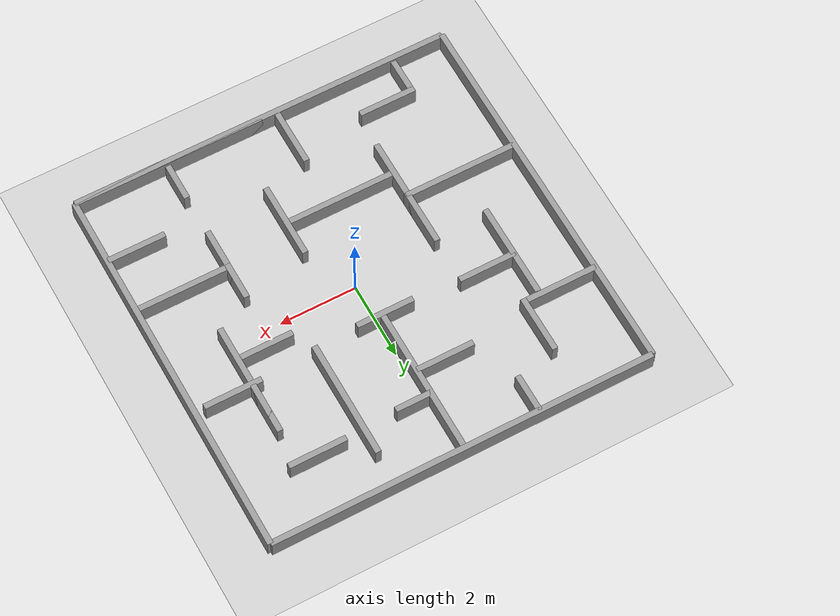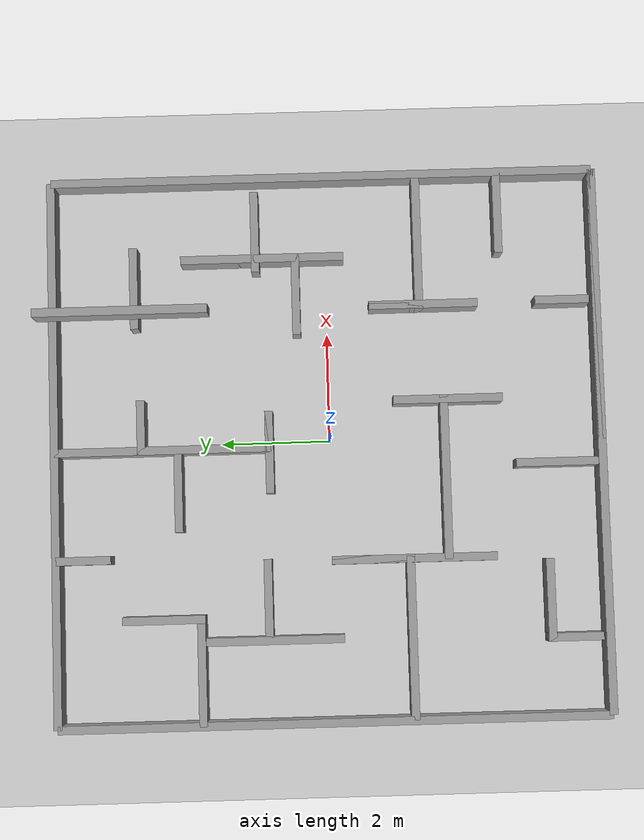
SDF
<sdf version="1.7">
 <world name="default">
  <light name="sun" type="directional">
   <pose>0 0 10 0 -0 0</pose>
   <diffuse>0.8 0.8 0.8 1</diffuse>
   <specular>0.2 0.2 0.2 1</specular>
   <attenuation>
    <range>1000</range>
    <constant>0.9</constant>
    <linear>0.01</linear>
    <quadratic>0.001</quadratic>
   </attenuation>
   <direction>-0.5 0.1 -0.9</direction>
   <spot><inner_angle>0</inner_angle><outer_angle>0</outer_angle><falloff>0</falloff></spot>
  </light>
  <model name="ground_plane">
   <static>1</static>
   <link name="link">
    <collision name="collision">
     <geometry><plane><normal>0 0 1</normal><size>100 100</size></plane></geometry>
     <surface><friction><ode><mu>100</mu><mu2>50</mu2></ode></friction></surface>
    </collision>
    <visual name="visual">
     <cast_shadows>0</cast_shadows>
     <geometry><plane><normal>0 0 1</normal><size>100 100</size></plane></geometry>
     <material>
      <script><uri>file://media/materials/scripts/gazebo.material</uri><name>Gazebo/Grey</name></script>
     </material>
    </visual>
   </link>
  </model>
  <gravity>0 0 -9.8</gravity>
  <magnetic_field>6e-06 2.3e-05 -4.2e-05</magnetic_field>
  <atmosphere type="adiabatic"/>
  <physics type="ode">
   <max_step_size>0.001</max_step_size>
   <real_time_factor>1</real_time_factor>
   <real_time_update_rate>1000</real_time_update_rate>
  </physics>
  <scene><ambient>0.4 0.4 0.4 1</ambient><background>0.7 0.7 0.7 1</background><shadows>1</shadows></scene>
  <audio><device>default</device></audio>
  <spherical_coordinates>
   <surface_model>EARTH_WGS84</surface_model>
   <latitude_deg>0</latitude_deg>
   <longitude_deg>0</longitude_deg>
   <elevation>0</elevation>
   <heading_deg>0</heading_deg>
  </spherical_coordinates>
  <model name="maze">
   <pose>-0.106037 0.038522 0 0 -0 0</pose>
   <link name="Wall_164">
    <collision name="Wall_164_Collision">
     <geometry><box><size>5 0.15 0.5</size></box></geometry>
     <pose>0 0 0.25 0 -0 0</pose>
    </collision>
    <visual name="Wall_164_Visual">
     <pose>0 0 0.25 0 -0 0</pose>
     <geometry><box><size>5 0.15 0.5</size></box></geometry>
     <material>
      <script><uri>file://media/materials/scripts/gazebo.material</uri><name>Gazebo/Grey</name></script>
      <ambient>1 1 1 1</ambient>
     </material>
     <meta><layer>0</layer></meta>
    </visual>
    <pose>2.5 -5 0 0 -0 0</pose>
   </link>
   <link name="Wall_165">
    <collision name="Wall_165_Collision">
     <geometry><box><size>10 0.15 0.5</size></box></geometry>
     <pose>0 0 0.25 0 -0 0</pose>
    </collision>
    <visual name="Wall_165_Visual">
     <pose>0 0 0.25 0 -0 0</pose>
     <geometry><box><size>10 0.15 0.5</size></box></geometry>
     <material>
      <script><uri>file://media/materials/scripts/gazebo.material</uri><name>Gazebo/Grey</name></script>
      <ambient>1 1 1 1</ambient>
     </material>
     <meta><layer>0</layer></meta>
    </visual>
    <pose>-0.0 -5 0 0 -0 3.14159</pose>
   </link>
   <link name="Wall_166">
    <collision name="Wall_166_Collision">
     <geometry><box><size>10 0.15 0.5</size></box></geometry>
     <pose>0 0 0.25 0 -0 0</pose>
    </collision>
    <visual name="Wall_166_Visual">
     <pose>0 0 0.25 0 -0 0</pose>
     <geometry><box><size>10 0.15 0.5</size></box></geometry>
     <material>
      <script><uri>file://media/materials/scripts/gazebo.material</uri><name>Gazebo/Grey</name></script>
      <ambient>1 1 1 1</ambient>
     </material>
     <meta><layer>0</layer></meta>
    </visual>
    <pose>-5 -0.0 0 0 -0 1.5708</pose>
   </link>
   <link name="Wall_168">
    <collision name="Wall_168_Collision">
     <geometry><box><size>10 0.15 0.5</size></box></geometry>
     <pose>0 0 0.25 0 -0 0</pose>
    </collision>
    <visual name="Wall_168_Visual">
     <pose>0 0 0.25 0 -0 0</pose>
     <geometry><box><size>10 0.15 0.5</size></box></geometry>
     <material>
      <script><uri>file://media/materials/scripts/gazebo.material</uri><name>Gazebo/Grey</name></script>
      <ambient>1 1 1 1</ambient>
     </material>
     <meta><layer>0</layer></meta>
    </visual>
    <pose>-0.0 5 0 0 -0 0</pose>
   </link>
   <link name="Wall_169">
    <collision name="Wall_169_Collision">
     <geometry><box><size>10 0.15 0.5</size></box></geometry>
     <pose>0 0 0.25 0 -0 0</pose>
    </collision>
    <visual name="Wall_169_Visual">
     <pose>0 0 0.25 0 -0 0</pose>
     <geometry><box><size>10 0.15 0.5</size></box></geometry>
     <material>
      <script><uri>file://media/materials/scripts/gazebo.material</uri><name>Gazebo/Grey</name></script>
      <ambient>1 1 1 1</ambient>
     </material>
     <meta><layer>0</layer></meta>
    </visual>
    <pose>5 -0.0 0 0 -0 -1.5708</pose>
   </link>
   <link name="Wall_177">
    <collision name="Wall_177_Collision">
     <geometry><box><size>1.5 0.15 0.5</size></box></geometry>
     <pose>0 0 0.25 0 -0 0</pose>
    </collision>
    <visual name="Wall_177_Visual">
     <pose>0 0 0.25 0 -0 0</pose>
     <geometry><box><size>1.5 0.15 0.5</size></box></geometry>
     <material>
      <script><uri>file://media/materials/scripts/gazebo.material</uri><name>Gazebo/Grey</name></script>
      <ambient>1 1 1 1</ambient>
     </material>
     <meta><layer>0</layer></meta>
    </visual>
    <pose>-0.75 2.75 0 0 -0 3.14159</pose>
   </link>
   <link name="Wall_179">
    <collision name="Wall_179_Collision">
     <geometry><box><size>2.5 0.15 0.5</size></box></geometry>
     <pose>-0.05 0 0.25 0 -0 0</pose>
    </collision>
    <visual name="Wall_179_Visual">
     <pose>-0.05 0 0.25 0 -0 0</pose>
     <geometry><box><size>2.5 0.15 0.5</size></box></geometry>
     <material>
      <script><uri>file://media/materials/scripts/gazebo.material</uri><name>Gazebo/Grey</name></script>
      <ambient>1 1 1 1</ambient>
     </material>
     <meta><layer>0</layer></meta>
    </visual>
    <pose>-3.5 1.0 0 0 -0 -1.5708</pose>
   </link>
   <link name="Wall_247">
    <collision name="Wall_247_Collision">
     <geometry><box><size>4 0.15 0.5</size></box></geometry>
     <pose>0 0 0.25 0 -0 0</pose>
    </collision>
    <visual name="Wall_247_Visual">
     <pose>0 0 0.25 0 -0 0</pose>
     <geometry><box><size>4 0.15 0.5</size></box></geometry>
     <material>
      <script><uri>file://media/materials/scripts/gazebo.material</uri><name>Gazebo/Grey</name></script>
      <ambient>1 1 1 1</ambient>
     </material>
     <meta><layer>0</layer></meta>
    </visual>
    <pose>-0.0 3.0 0 0 -0 -1.5708</pose>
   </link>
   <link name="Wall_253">
    <collision name="Wall_253_Collision">
     <geometry><box><size>3 0.15 0.5</size></box></geometry>
     <pose>0 0 0.25 0 -0 0</pose>
    </collision>
    <visual name="Wall_253_Visual">
     <pose>0 0 0.25 0 -0 0</pose>
     <geometry><box><size>3 0.15 0.5</size></box></geometry>
     <material>
      <script><uri>file://media/materials/scripts/gazebo.material</uri><name>Gazebo/Grey</name></script>
      <ambient>1 1 1 1</ambient>
     </material>
     <meta><layer>0</layer></meta>
    </visual>
    <pose>2.25 3.5 2 0 -0 -1.5708</pose>
   </link>
   <link name="Wall_256">
    <collision name="Wall_256_Collision">
     <geometry><box><size>1.5 0.15 0.5</size></box></geometry>
     <pose>0 0 0.25 0 -0 0</pose>
    </collision>
    <visual name="Wall_256_Visual">
     <pose>0 0 0.25 0 -0 0</pose>
     <geometry><box><size>1.5 0.15 0.5</size></box></geometry>
     <material>
      <script><uri>file://media/materials/scripts/gazebo.material</uri><name>Gazebo/Grey</name></script>
      <ambient>1 1 1 1</ambient>
     </material>
     <meta><layer>0</layer></meta>
    </visual>
    <pose>3.0 3.5 0 0 -0 0</pose>
   </link>
   <link name="Wall_264">
    <collision name="Wall_264_Collision">
     <geometry><box><size>1.5 0.15 0.5</size></box></geometry>
     <pose>0 0 0.25 0 -0 0</pose>
    </collision>
    <visual name="Wall_264_Visual">
     <pose>0 0 0.25 0 -0 0</pose>
     <geometry><box><size>1.5 0.15 0.5</size></box></geometry>
     <material>
      <script><uri>file://media/materials/scripts/gazebo.material</uri><name>Gazebo/Grey</name></script>
      <ambient>1 1 1 1</ambient>
     </material>
     <meta><layer>0</layer></meta>
    </visual>
    <pose>4.0 1.25 0 0 -0 3.14159</pose>
   </link>
   <link name="Wall_265">
    <collision name="Wall_265_Collision">
     <geometry><box><size>1.5 0.15 0.5</size></box></geometry>
     <pose>0 0 0.25 0 -0 0</pose>
    </collision>
    <visual name="Wall_265_Visual">
     <pose>0 0 0.25 0 -0 0</pose>
     <geometry><box><size>1.5 0.15 0.5</size></box></geometry>
     <material>
      <script><uri>file://media/materials/scripts/gazebo.material</uri><name>Gazebo/Grey</name></script>
      <ambient>1 1 1 1</ambient>
     </material>
     <meta><layer>0</layer></meta>
    </visual>
    <pose>3.50043 1.87678 0 0 -0 1.5708</pose>
   </link>
   <link name="Wall_266">
    <collision name="Wall_266_Collision">
     <geometry><box><size>3 0.15 0.5</size></box></geometry>
     <pose>0 0 0.25 0 -0 0</pose>
    </collision>
    <visual name="Wall_266_Visual">
     <pose>0 0 0.25 0 -0 0</pose>
     <geometry><box><size>3 0.15 0.5</size></box></geometry>
     <material>
      <script><uri>file://media/materials/scripts/gazebo.material</uri><name>Gazebo/Grey</name></script>
      <ambient>1 1 1 1</ambient>
     </material>
     <meta><layer>0</layer></meta>
    </visual>
    <pose>3.50043 1.12678 0 0 -0 -1.5708</pose>
   </link>
   <link name="Wall_268">
    <collision name="Wall_268_Collision">
     <geometry><box><size>1.5 0.15 0.5</size></box></geometry>
     <pose>0 0 0.25 0 -0 0</pose>
    </collision>
    <visual name="Wall_268_Visual">
     <pose>0 0 0.25 0 -0 0</pose>
     <geometry><box><size>1.5 0.15 0.5</size></box></geometry>
     <material>
      <script><uri>file://media/materials/scripts/gazebo.material</uri><name>Gazebo/Grey</name></script>
      <ambient>1 1 1 1</ambient>
     </material>
     <meta><layer>0</layer></meta>
    </visual>
    <pose>2.81408 0.520327 0 0 -0 3.14159</pose>
   </link>
   <link name="Wall_272">
    <collision name="Wall_272_Collision">
     <geometry><box><size>2 0.15 0.5</size></box></geometry>
     <pose>0 0 0.25 0 -0 0</pose>
    </collision>
    <visual name="Wall_272_Visual">
     <pose>0 0 0.25 0 -0 0</pose>
     <geometry><box><size>2 0.15 0.5</size></box></geometry>
     <material>
      <script><uri>file://media/materials/scripts/gazebo.material</uri><name>Gazebo/Grey</name></script>
      <ambient>1 1 1 1</ambient>
     </material>
     <meta><layer>0</layer></meta>
    </visual>
    <pose>-4.00758 2.38241 0 0 -0 0</pose>
   </link>
   <link name="Wall_273">
    <collision name="Wall_273_Collision">
     <geometry><box><size>1.5 0.15 0.5</size></box></geometry>
     <pose>0 0 0.25 0 -0 0</pose>
    </collision>
    <visual name="Wall_273_Visual">
     <pose>0 0 0.25 0 -0 0</pose>
     <geometry><box><size>1.5 0.15 0.5</size></box></geometry>
     <material>
      <script><uri>file://media/materials/scripts/gazebo.material</uri><name>Gazebo/Grey</name></script>
      <ambient>1 1 1 1</ambient>
     </material>
     <meta><layer>0</layer></meta>
    </visual>
    <pose>-3.08258 3.05741 0 0 -0 1.5708</pose>
   </link>
   <link name="Wall_277">
    <collision name="Wall_277_Collision">
     <geometry><box><size>1.5 0.15 0.5</size></box></geometry>
     <pose>0 0 0.25 0 -0 0</pose>
    </collision>
    <visual name="Wall_277_Visual">
     <pose>0 0 0.25 0 -0 0</pose>
     <geometry><box><size>1.5 0.15 0.5</size></box></geometry>
     <material>
      <script><uri>file://media/materials/scripts/gazebo.material</uri><name>Gazebo/Grey</name></script>
      <ambient>1 1 1 1</ambient>
     </material>
     <meta><layer>0</layer></meta>
    </visual>
    <pose>-2.77998 1.15515 0 0 -0 0</pose>
   </link>
   <link name="Wall_281">
    <collision name="Wall_281_Collision">
     <geometry><box><size>0.75 0.15 0.5</size></box></geometry>
     <pose>0 0 0.25 0 -0 0</pose>
    </collision>
    <visual name="Wall_281_Visual">
     <pose>0 0 0.25 0 -0 0</pose>
     <geometry><box><size>0.75 0.15 0.5</size></box></geometry>
     <material>
      <script><uri>file://media/materials/scripts/gazebo.material</uri><name>Gazebo/Grey</name></script>
      <ambient>1 1 1 1</ambient>
     </material>
     <meta><layer>0</layer></meta>
    </visual>
    <pose>0.292919 1.07559 0 0 -0 0</pose>
   </link>
   <link name="Wall_282">
    <collision name="Wall_282_Collision">
     <geometry><box><size>1.5 0.15 0.5</size></box></geometry>
     <pose>0 0 0.25 0 -0 0</pose>
    </collision>
    <visual name="Wall_282_Visual">
     <pose>0 0 0.25 0 -0 0</pose>
     <geometry><box><size>1.5 0.15 0.5</size></box></geometry>
     <material>
      <script><uri>file://media/materials/scripts/gazebo.material</uri><name>Gazebo/Grey</name></script>
      <ambient>1 1 1 1</ambient>
     </material>
     <meta><layer>0</layer></meta>
    </visual>
    <pose>-0.082081 1.07559 0 0 -0 3.14159</pose>
   </link>
   <link name="Wall_284">
    <collision name="Wall_284_Collision">
     <geometry><box><size>2.95 0.15 0.5</size></box></geometry>
     <pose>0.0 0 0.25 0 -0 0</pose>
    </collision>
    <visual name="Wall_284_Visual">
     <pose>0.0 0 0.25 0 -0 0</pose>
     <geometry><box><size>2.95 0.15 0.5</size></box></geometry>
     <material>
      <script><uri>file://media/materials/scripts/gazebo.material</uri><name>Gazebo/Grey</name></script>
      <ambient>1 1 1 1</ambient>
     </material>
     <meta><layer>0</layer></meta>
    </visual>
    <pose>-3.51233 -1.43705 0 0 -0 0</pose>
   </link>
   <link name="Wall_285">
    <collision name="Wall_285_Collision">
     <geometry><box><size>1.5 0.15 0.5</size></box></geometry>
     <pose>0 0 0.25 0 -0 0</pose>
    </collision>
    <visual name="Wall_285_Visual">
     <pose>0 0 0.25 0 -0 0</pose>
     <geometry><box><size>1.5 0.15 0.5</size></box></geometry>
     <material>
      <script><uri>file://media/materials/scripts/gazebo.material</uri><name>Gazebo/Grey</name></script>
      <ambient>1 1 1 1</ambient>
     </material>
     <meta><layer>0</layer></meta>
    </visual>
    <pose>-2.08733 -0.762054 0 0 -0 1.5708</pose>
   </link>
   <link name="Wall_286">
    <collision name="Wall_286_Collision">
     <geometry><box><size>3 0.15 0.5</size></box></geometry>
     <pose>0 0 0.25 0 -0 0</pose>
    </collision>
    <visual name="Wall_286_Visual">
     <pose>0 0 0.25 0 -0 0</pose>
     <geometry><box><size>3 0.15 0.5</size></box></geometry>
     <material>
      <script><uri>file://media/materials/scripts/gazebo.material</uri><name>Gazebo/Grey</name></script>
      <ambient>1 1 1 1</ambient>
     </material>
     <meta><layer>0</layer></meta>
    </visual>
    <pose>-2.08733 -1.51205 0 0 -0 -1.5708</pose>
   </link>
   <link name="Wall_288">
    <collision name="Wall_288_Collision">
     <geometry><box><size>1 0.15 0.5</size></box></geometry>
     <pose>0 0 0.25 0 -0 0</pose>
    </collision>
    <visual name="Wall_288_Visual">
     <pose>0 0 0.25 0 -0 0</pose>
     <geometry><box><size>1 0.15 0.5</size></box></geometry>
     <material>
      <script><uri>file://media/materials/scripts/gazebo.material</uri><name>Gazebo/Grey</name></script>
      <ambient>1 1 1 1</ambient>
     </material>
     <meta><layer>0</layer></meta>
    </visual>
    <pose>-3.58375 -4.3884 0 0 -0 1.5708</pose>
   </link>
   <link name="Wall_289">
    <collision name="Wall_289_Collision">
     <geometry><box><size>1.5 0.15 0.5</size></box></geometry>
     <pose>0 0 0.25 0 -0 0</pose>
    </collision>
    <visual name="Wall_289_Visual">
     <pose>0 0 0.25 0 -0 0</pose>
     <geometry><box><size>1.5 0.15 0.5</size></box></geometry>
     <material>
      <script><uri>file://media/materials/scripts/gazebo.material</uri><name>Gazebo/Grey</name></script>
      <ambient>1 1 1 1</ambient>
     </material>
     <meta><layer>0</layer></meta>
    </visual>
    <pose>-2.90875 -3.9634 0 0 -0 0</pose>
   </link>
   <link name="Wall_291">
    <collision name="Wall_291_Collision">
     <geometry><box><size>3 0.15 0.5</size></box></geometry>
     <pose>0.05 0 0.25 0 -0 0</pose>
    </collision>
    <visual name="Wall_291_Visual">
     <pose>0.05 0 0.25 0 -0 0</pose>
     <geometry><box><size>3 0.15 0.5</size></box></geometry>
     <material>
      <script><uri>file://media/materials/scripts/gazebo.material</uri><name>Gazebo/Grey</name></script>
      <ambient>1 1 1 1</ambient>
     </material>
     <meta><layer>0</layer></meta>
    </visual>
    <pose>-0.668294 -2.13666 0 0 -0 0</pose>
   </link>
   <link name="Wall_293">
    <collision name="Wall_293_Collision">
     <geometry><box><size>2 0.15 0.5</size></box></geometry>
     <pose>0 0.05 0.25 0 -0 0</pose>
    </collision>
    <visual name="Wall_293_Visual">
     <pose>0 0.05 0.25 0 -0 0</pose>
     <geometry><box><size>2 0.15 0.5</size></box></geometry>
     <material>
      <script><uri>file://media/materials/scripts/gazebo.material</uri><name>Gazebo/Grey</name></script>
      <ambient>1 1 1 1</ambient>
     </material>
     <meta><layer>0</layer></meta>
    </visual>
    <pose>0.756706 -2.21166 0 0 -0 -1.5708</pose>
   </link>
   <link name="Wall_295">
    <collision name="Wall_295_Collision">
     <geometry><box><size>1.5 0.15 0.5</size></box></geometry>
     <pose>0 0 0.25 0 -0 0</pose>
    </collision>
    <visual name="Wall_295_Visual">
     <pose>0 0 0.25 0 -0 0</pose>
     <geometry><box><size>1.5 0.15 0.5</size></box></geometry>
     <material>
      <script><uri>file://media/materials/scripts/gazebo.material</uri><name>Gazebo/Grey</name></script>
      <ambient>1 1 1 1</ambient>
     </material>
     <meta><layer>0</layer></meta>
    </visual>
    <pose>-0.405123 -4.16881 0 0 -0 1.5708</pose>
   </link>
   <link name="Wall_297">
    <collision name="Wall_297_Collision">
     <geometry><box><size>2.5 0.15 0.5</size></box></geometry>
     <pose>0 0 0.25 0 -0 0</pose>
    </collision>
    <visual name="Wall_297_Visual">
     <pose>0 0 0.25 0 -0 0</pose>
     <geometry><box><size>2.5 0.15 0.5</size></box></geometry>
     <material>
      <script><uri>file://media/materials/scripts/gazebo.material</uri><name>Gazebo/Grey</name></script>
      <ambient>1 1 1 1</ambient>
     </material>
     <meta><layer>0</layer></meta>
    </visual>
    <pose>3.74294 -1.74123 0 0 -0 3.14159</pose>
   </link>
   <link name="Wall_298">
    <collision name="Wall_298_Collision">
     <geometry><box><size>1 0.15 0.5</size></box></geometry>
     <pose>0 0 0.25 0 -0 0</pose>
    </collision>
    <visual name="Wall_298_Visual">
     <pose>0 0 0.25 0 -0 0</pose>
     <geometry><box><size>1 0.15 0.5</size></box></geometry>
     <material>
      <script><uri>file://media/materials/scripts/gazebo.material</uri><name>Gazebo/Grey</name></script>
      <ambient>1 1 1 1</ambient>
     </material>
     <meta><layer>0</layer></meta>
    </visual>
    <pose>2.56794 -1.31623 0 0 -0 1.5708</pose>
   </link>
   <link name="Wall_299">
    <collision name="Wall_299_Collision">
     <geometry><box><size>2 0.15 0.5</size></box></geometry>
     <pose>0 0 0.25 0 -0 0</pose>
    </collision>
    <visual name="Wall_299_Visual">
     <pose>0 0 0.25 0 -0 0</pose>
     <geometry><box><size>2 0.15 0.5</size></box></geometry>
     <material>
      <script><uri>file://media/materials/scripts/gazebo.material</uri><name>Gazebo/Grey</name></script>
      <ambient>1 1 1 1</ambient>
     </material>
     <meta><layer>0</layer></meta>
    </visual>
    <pose>2.56794 -1.81623 0 0 -0 -1.5708</pose>
   </link>
   <link name="Wall_312">
    <collision name="Wall_312_Collision">
     <geometry><box><size>1 0.15 0.5</size></box></geometry>
     <pose>0 0 0.25 0 -0 0</pose>
    </collision>
    <visual name="Wall_312_Visual">
     <pose>0 0 0.25 0 -0 0</pose>
     <geometry><box><size>1 0.15 0.5</size></box></geometry>
     <material>
      <script><uri>file://media/materials/scripts/gazebo.material</uri><name>Gazebo/Grey</name></script>
      <ambient>1 1 1 1</ambient>
     </material>
     <meta><layer>0</layer></meta>
    </visual>
    <pose>-1.97001 4.49802 0 0 -0 -1.5708</pose>
   </link>
   <link name="Wall_317">
    <collision name="Wall_317_Collision">
     <geometry><box><size>1 0.15 0.5</size></box></geometry>
     <pose>0 0 0.25 0 -0 0</pose>
    </collision>
    <visual name="Wall_317_Visual">
     <pose>0 0 0.25 0 -0 0</pose>
     <geometry><box><size>1 0.15 0.5</size></box></geometry>
     <material>
      <script><uri>file://media/materials/scripts/gazebo.material</uri><name>Gazebo/Grey</name></script>
      <ambient>1 1 1 1</ambient>
     </material>
     <meta><layer>0</layer></meta>
    </visual>
    <pose>0.425517 3.41537 0 0 -0 0</pose>
   </link>
   <link name="Wall_319">
    <collision name="Wall_319_Collision">
     <geometry><box><size>1 0.15 0.5</size></box></geometry>
     <pose>0 0 0.25 0 -0 0</pose>
    </collision>
    <visual name="Wall_319_Visual">
     <pose>0 0 0.25 0 -0 0</pose>
     <geometry><box><size>1 0.15 0.5</size></box></geometry>
     <material>
      <script><uri>file://media/materials/scripts/gazebo.material</uri><name>Gazebo/Grey</name></script>
      <ambient>1 1 1 1</ambient>
     </material>
     <meta><layer>0</layer></meta>
    </visual>
    <pose>2.57939 -4.37236 0 0 -0 1.5708</pose>
   </link>
   <link name="Wall_322">
    <collision name="Wall_322_Collision">
     <geometry><box><size>1.5 0.15 0.5</size></box></geometry>
     <pose>0.025 0 0.25 0 -0 0</pose>
    </collision>
    <visual name="Wall_322_Visual">
     <pose>0.025 0 0.25 0 -0 0</pose>
     <geometry><box><size>1.5 0.15 0.5</size></box></geometry>
     <material>
      <script><uri>file://media/materials/scripts/gazebo.material</uri><name>Gazebo/Grey</name></script>
      <ambient>1 1 1 1</ambient>
     </material>
     <meta><layer>0</layer></meta>
    </visual>
    <pose>4.26233 -3.23812 0 0 -0 3.14159</pose>
   </link>
   <static>1</static>
  </model>
 </world>
</sdf>
